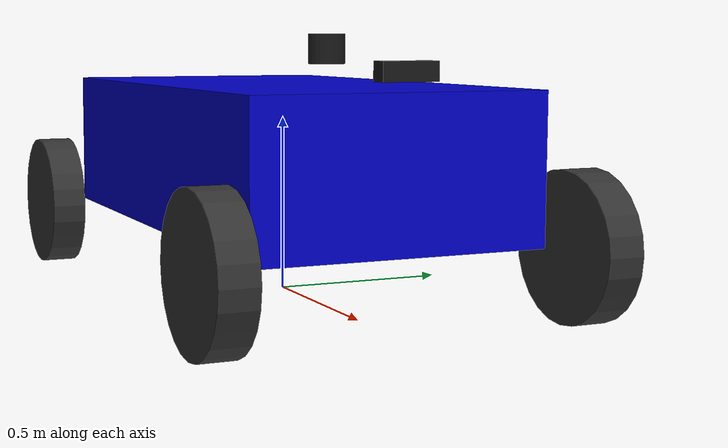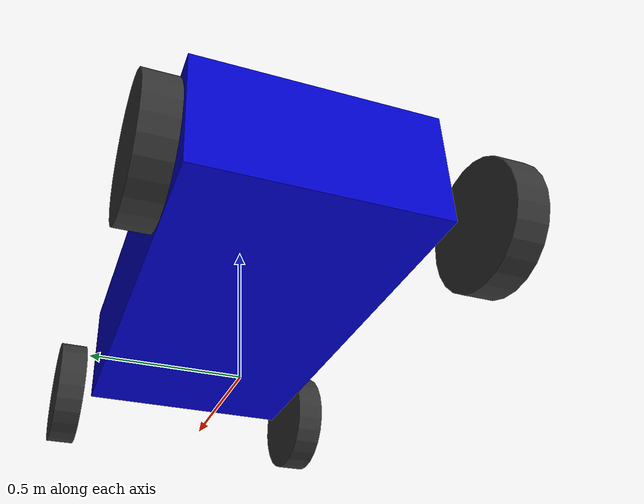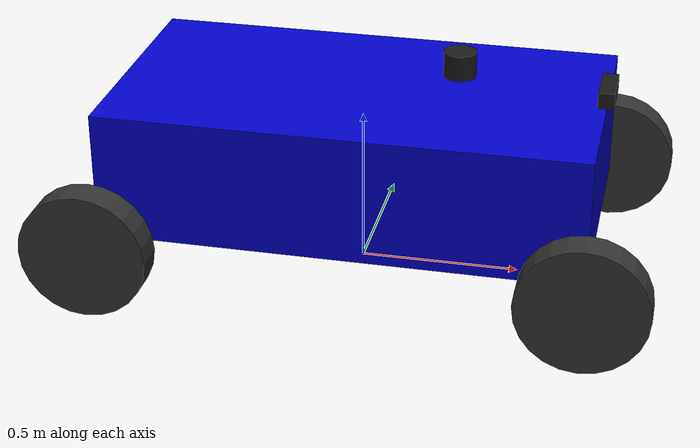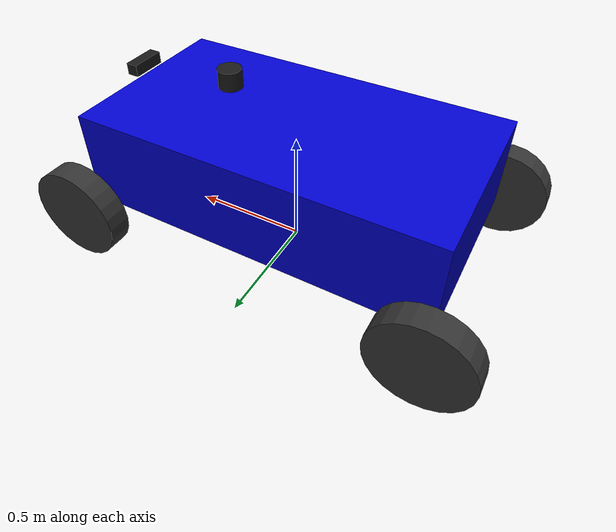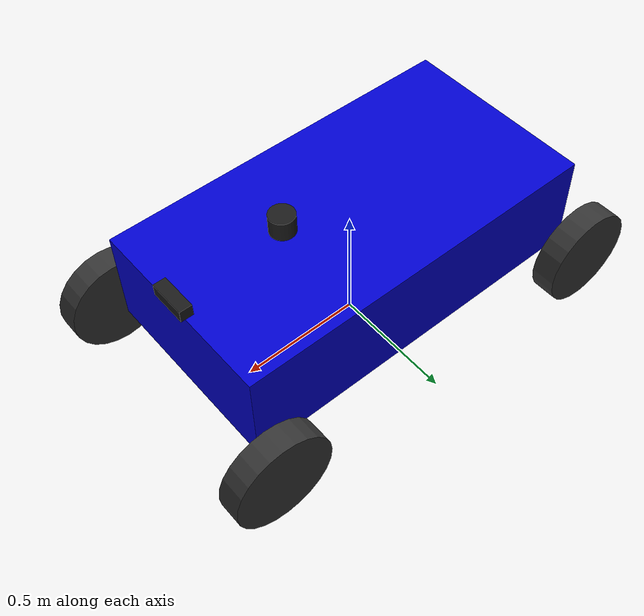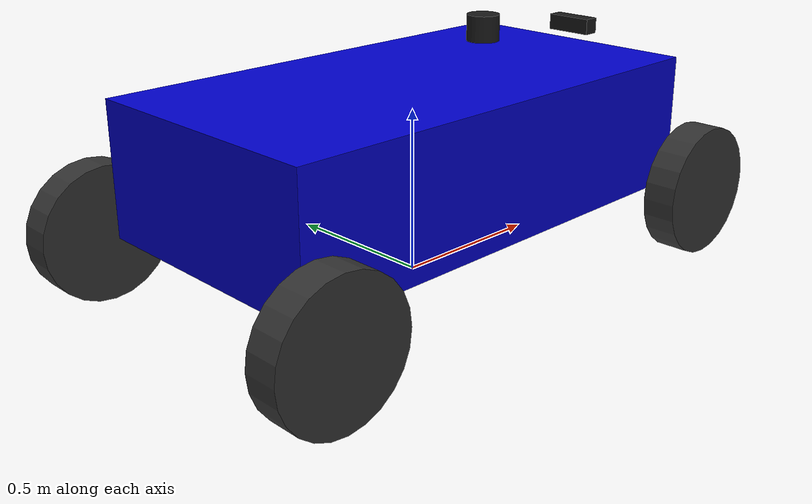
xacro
<?xml version="1.0"?>
<robot xmlns:xacro="http://www.ros.org/wiki/xacro" name="evoart_robotaksi">

    <material name="black"> <color rgba="0.1 0.1 0.1 1"/> </material>
    <material name="blue"> <color rgba="0.0 0.0 0.8 1"/> </material>
    <material name="dark_grey"> <color rgba="0.2 0.2 0.2 1"/> </material>

    <link name="base_footprint"/>

    <link name="base_link">
        <visual>
            <geometry> <box size="1.5 0.8 0.4"/> </geometry>
            <origin xyz="0 0 0.2" rpy="0 0 0"/>
            <material name="blue"/>
        </visual>
        <inertial>
            <mass value="50.0"/>
            <origin xyz="0 0 0.2"/>
            <inertia ixx="3.33" ixy="0.0" ixz="0.0" iyy="10.41" iyz="0.0" izz="12.41"/>
        </inertial>
    </link>

    <joint name="base_joint" type="fixed">
        <parent link="base_footprint"/>
        <child link="base_link"/>
        <origin xyz="0 0 0.2" rpy="0 0 0"/>
    </joint>

    <link name="arka_sol_teker_link">
        <visual>
            <geometry> <cylinder radius="0.2" length="0.1"/> </geometry>
            <material name="dark_grey"/>
        </visual>
        <collision>
            <geometry> <cylinder radius="0.2" length="0.1"/> </geometry>
        </collision>
        <inertial>
            <mass value="5.0"/>
            <origin xyz="0 0 0"/>
            <inertia ixx="0.054" ixy="0.0" ixz="0.0" iyy="0.054" iyz="0.0" izz="0.1"/>
        </inertial>
    </link>
    <joint name="arka_sol_teker_joint" type="continuous">
        <parent link="base_link"/>
        <child link="arka_sol_teker_link"/>
        <origin xyz="-0.75 0.5 0" rpy="-1.5708 0 0"/>
        <axis xyz="0 0 1"/>
    </joint>

    <link name="arka_sag_teker_link">
        <visual>
            <geometry> <cylinder radius="0.2" length="0.1"/> </geometry>
            <material name="dark_grey"/>
        </visual>
        <collision>
            <geometry> <cylinder radius="0.2" length="0.1"/> </geometry>
        </collision>
        <inertial>
            <mass value="5.0"/>
            <origin xyz="0 0 0"/>
            <inertia ixx="0.054" ixy="0.0" ixz="0.0" iyy="0.054" iyz="0.0" izz="0.1"/>
        </inertial>
    </link>
    <joint name="arka_sag_teker_joint" type="continuous">
        <parent link="base_link"/>
        <child link="arka_sag_teker_link"/>
        <origin xyz="-0.75 -0.5 0" rpy="-1.5708 0 0"/>
        <axis xyz="0 0 1"/>
    </joint>

    <link name="on_sol_direksiyon_link">
        <inertial>
            <mass value="0.5"/>
            <origin xyz="0 0 0"/>
            <inertia ixx="0.01" ixy="0.0" ixz="0.0" iyy="0.01" iyz="0.0" izz="0.01"/>
        </inertial>
    </link>
    <joint name="on_sol_direksiyon_joint" type="revolute">
        <parent link="base_link"/>
        <child link="on_sol_direksiyon_link"/>
        <origin xyz="0.75 0.5 0" rpy="0 0 0"/>
        <axis xyz="0 0 1"/>
        <limit lower="-0.5" upper="0.5" effort="50.0" velocity="5.0"/>
    </joint>

    <link name="on_sol_teker_link">
        <visual>
            <geometry> <cylinder radius="0.2" length="0.1"/> </geometry>
            <material name="dark_grey"/>
        </visual>
        <collision>
            <geometry> <cylinder radius="0.2" length="0.1"/> </geometry>
        </collision>
        <inertial>
            <mass value="5.0"/>
            <origin xyz="0 0 0"/>
            <inertia ixx="0.054" ixy="0.0" ixz="0.0" iyy="0.054" iyz="0.0" izz="0.1"/>
        </inertial>
    </link>
    <joint name="on_sol_teker_joint" type="continuous">
        <parent link="on_sol_direksiyon_link"/>
        <child link="on_sol_teker_link"/>
        <origin xyz="0 0 0" rpy="-1.5708 0 0"/>
        <axis xyz="0 0 1"/>
    </joint>

    <link name="on_sag_direksiyon_link">
        <inertial>
            <mass value="0.5"/>
            <origin xyz="0 0 0"/>
            <inertia ixx="0.01" ixy="0.0" ixz="0.0" iyy="0.01" iyz="0.0" izz="0.01"/>
        </inertial>
    </link>
    <joint name="on_sag_direksiyon_joint" type="revolute">
        <parent link="base_link"/>
        <child link="on_sag_direksiyon_link"/>
        <origin xyz="0.75 -0.5 0" rpy="0 0 0"/>
        <axis xyz="0 0 1"/>
        <limit lower="-0.5" upper="0.5" effort="50.0" velocity="5.0"/>
    </joint>

    <link name="on_sag_teker_link">
        <visual>
            <geometry> <cylinder radius="0.2" length="0.1"/> </geometry>
            <material name="dark_grey"/>
        </visual>
        <collision>
            <geometry> <cylinder radius="0.2" length="0.1"/> </geometry>
        </collision>
        <inertial>
            <mass value="5.0"/>
            <origin xyz="0 0 0"/>
            <inertia ixx="0.054" ixy="0.0" ixz="0.0" iyy="0.054" iyz="0.0" izz="0.1"/>
        </inertial>
    </link>
    <joint name="on_sag_teker_joint" type="continuous">
        <parent link="on_sag_direksiyon_link"/>
        <child link="on_sag_teker_link"/>
        <origin xyz="0 0 0" rpy="-1.5708 0 0"/>
        <axis xyz="0 0 1"/>
    </joint>

    <link name="zed_camera_link">
        <visual>
            <geometry> <box size="0.05 0.15 0.05"/> </geometry>
            <material name="black"/>
        </visual>
    </link>
    <joint name="zed_camera_joint" type="fixed">
        <parent link="base_link"/>
        <child link="zed_camera_link"/>
        <origin xyz="0.75 0.0 0.45" rpy="0 0 0"/>
    </joint>

    <link name="lidar_link">
        <visual>
            <geometry> <cylinder radius="0.05" length="0.08"/> </geometry>
            <material name="black"/>
        </visual>
    </link>
    <joint name="lidar_joint" type="fixed">
        <parent link="base_link"/>
        <child link="lidar_link"/>
        <origin xyz="0.3 0.0 0.5" rpy="0 0 0"/>
    </joint>

    <gazebo>
        <plugin filename="libignition-gazebo-ackermann-steering-system.so" name="ignition::gazebo::systems::AckermannSteering">
            <left_joint>arka_sol_teker_joint</left_joint>
            <right_joint>arka_sag_teker_joint</right_joint>
            <left_steering_joint>on_sol_direksiyon_joint</left_steering_joint>
            <right_steering_joint>on_sag_direksiyon_joint</right_steering_joint>

            <kingpin_width>1.0</kingpin_width>
            <steering_limit>0.5</steering_limit>
            <wheel_base>1.5</wheel_base>

            <wheel_separation>1.0</wheel_separation>
            <wheel_radius>0.2</wheel_radius>

            <topic>/cmd_vel</topic>
            <odom_topic>/odom</odom_topic>
            <frame_id>odom</frame_id>
            <child_frame_id>base_footprint</child_frame_id>
            <odom_publish_frequency>30</odom_publish_frequency>
            <publish_odom_tf>true</publish_odom_tf>
        </plugin>
    </gazebo>

    <gazebo reference="lidar_link">
        <sensor type="gpu_lidar" name="velodyne_vlp16">
            <topic>/scan</topic>
            <update_rate>10</update_rate>
            <ignition_frame_id>lidar_link</ignition_frame_id>
            <ray>
                <scan>
                    <horizontal>
                        <samples>360</samples>
                        <resolution>1</resolution>
                        <min_angle>-3.14159</min_angle>
                        <max_angle>3.14159</max_angle>
                    </horizontal>
                    <vertical>
                        <samples>16</samples>
                        <resolution>1</resolution>
                        <min_angle>-0.261799</min_angle>
                        <max_angle>0.261799</max_angle>
                    </vertical>
                </scan>
                <range>
                    <min>0.2</min>
                    <max>100.0</max>
                    <resolution>0.01</resolution>
                </range>
            </ray>
            <always_on>1</always_on>
            <visualize>true</visualize>
        </sensor>
    </gazebo>

    <gazebo reference="zed_camera_link">
        <sensor type="camera" name="zed2i_camera">
            <topic>/zed/zed_node/rgb/image_rect_color</topic>
            <update_rate>30</update_rate>
            <camera>
                <horizontal_fov>1.91986</horizontal_fov>
                <image>
                    <width>1920</width>
                    <height>1080</height>
                    <format>R8G8B8</format>
                </image>
                <clip>
                    <near>0.1</near>
                    <far>100</far>
                </clip>
            </camera>
            <always_on>1</always_on>
            <visualize>true</visualize>
        </sensor>
    </gazebo>

    <gazebo>
        <plugin filename="libignition-gazebo-joint-state-publisher-system.so" name="ignition::gazebo::systems::JointStatePublisher">
            <update_rate>30</update_rate>
            <joint_name>arka_sol_teker_joint</joint_name>
            <joint_name>arka_sag_teker_joint</joint_name>
            <joint_name>on_sol_direksiyon_joint</joint_name>
            <joint_name>on_sag_direksiyon_joint</joint_name>
            <joint_name>on_sol_teker_joint</joint_name>
            <joint_name>on_sag_teker_joint</joint_name>
            <topic>/joint_states</topic>
        </plugin>
    </gazebo>

    <gazebo reference="arka_sag_teker_link">
      <mu>1.0</mu>
      <mu2>1.0</mu2>
      <fdir1>1 0 0</fdir1>
      <minDepth>0.005</minDepth>
    </gazebo>
    <gazebo reference="arka_sol_teker_link">
      <mu>1.0</mu>
      <mu2>1.0</mu2>
      <fdir1>1 0 0</fdir1>
      <minDepth>0.005</minDepth>
    </gazebo>

    <gazebo reference="on_sag_teker_link">
      <mu>1.0</mu>
      <mu2>1.0</mu2>
    </gazebo>
    <gazebo reference="on_sol_teker_link">
      <mu>1.0</mu>
      <mu2>1.0</mu2>
    </gazebo>

</robot>
